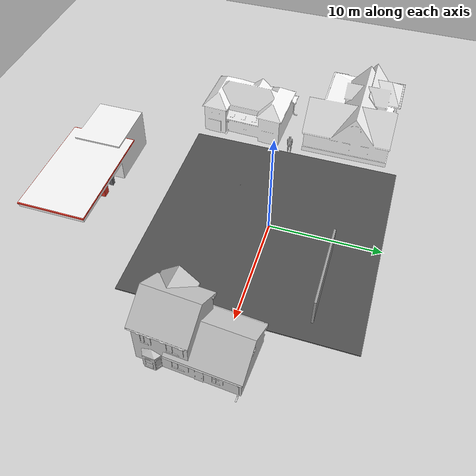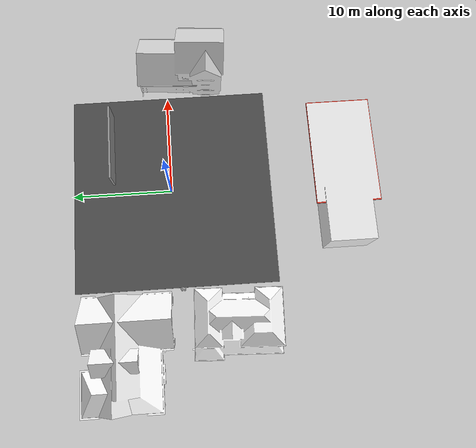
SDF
<sdf version="1.6">
 <world name="default">
  <light name="sun" type="directional">
   <pose>0 0 10 0 -0 0</pose>
   <diffuse>0.8 0.8 0.8 1</diffuse>
   <specular>0.1 0.1 0.1 1</specular>
   <attenuation>
    <range>1000</range>
    <constant>0.9</constant>
    <linear>0.01</linear>
    <quadratic>0.001</quadratic>
   </attenuation>
   <direction>-0.5 0.5 -1</direction>
  </light>
  <model name="ground_plane">
   <static>1</static>
   <link name="link">
    <collision name="collision">
     <geometry><plane><normal>0 0 1</normal><size>100 100</size></plane></geometry>
     <surface><friction><ode><mu>100</mu><mu2>50</mu2></ode></friction></surface>
    </collision>
    <visual name="visual">
     <cast_shadows>0</cast_shadows>
     <geometry><plane><normal>0 0 1</normal><size>100 100</size></plane></geometry>
     <material>
      <script><uri>file://media/materials/scripts/gazebo.material</uri><name>Gazebo/Grey</name></script>
     </material>
    </visual>
   </link>
  </model>
  <gravity>0 0 -9.8</gravity>
  <magnetic_field>6e-06 2.3e-05 -4.2e-05</magnetic_field>
  <atmosphere type="adiabatic"/>
  <physics name="default_physics" default="0" type="ode">
   <max_step_size>0.001</max_step_size>
   <real_time_factor>1</real_time_factor>
   <real_time_update_rate>1000</real_time_update_rate>
  </physics>
  <scene><ambient>0.4 0.4 0.4 1</ambient><background>0.7 0.7 0.7 1</background><shadows>1</shadows></scene>
  <spherical_coordinates>
   <surface_model>EARTH_WGS84</surface_model>
   <latitude_deg>0</latitude_deg>
   <longitude_deg>0</longitude_deg>
   <elevation>0</elevation>
   <heading_deg>0</heading_deg>
  </spherical_coordinates>
  <model name="asphalt_plane">
   <static>1</static>
   <link name="link">
    <collision name="collision"><geometry><box><size>20 20 0.1</size></box></geometry></collision>
    <visual name="visual">
     <cast_shadows>0</cast_shadows>
     <geometry><box><size>20 20 0.1</size></box></geometry>
     <material>
      <script>
       <uri>model://asphalt_plane/materials/scripts</uri>
       <uri>model://asphalt_plane/materials/textures</uri>
       <name>vrc/asphalt</name>
      </script>
     </material>
    </visual>
   </link>
   <pose>0.224182 -0.090763 0 0 -0 0</pose>
  </model>
  <model name="grey_wall">
   <static>1</static>
   <link name="link">
    <pose>0 0 1.4 0 -0 0</pose>
    <collision name="collision"><geometry><box><size>7.5 0.2 2.8</size></box></geometry></collision>
    <visual name="visual">
     <cast_shadows>0</cast_shadows>
     <geometry><box><size>7.5 0.2 2.8</size></box></geometry>
     <material>
      <script>
       <uri>model://grey_wall/materials/scripts</uri>
       <uri>model://grey_wall/materials/textures</uri>
       <name>vrc/grey_wall</name>
      </script>
     </material>
    </visual>
   </link>
   <pose>4.79983 5.8163 0 0 -0 0</pose>
  </model>
  <model name="House 1">
   <static>1</static>
   <link name="link">
    <collision name="collision">
     <geometry><mesh><uri>model://house_1/meshes/house_1.dae</uri><scale>1 1 1</scale></mesh></geometry>
    </collision>
    <visual name="visual">
     <geometry><mesh><uri>model://house_1/meshes/house_1.dae</uri><scale>1 1 1</scale></mesh></geometry>
     <material>
      <script>
       <uri>model://house_1/materials/scripts</uri>
       <uri>model://house_1/materials/textures</uri>
       <name>House_1/Diffuse</name>
      </script>
      <shader type="normal_map_object_space"><normal_map>House_1_Normal.png</normal_map></shader>
     </material>
    </visual>
   </link>
   <pose>-15.4702 4.8985 0 0 -0 0</pose>
  </model>
  <model name="House 2">
   <static>1</static>
   <link name="link">
    <collision name="collision">
     <geometry><mesh><uri>model://house_2/meshes/house_2.dae</uri><scale>1 1 1</scale></mesh></geometry>
    </collision>
    <visual name="visual">
     <geometry><mesh><uri>model://house_2/meshes/house_2.dae</uri><scale>1 1 1</scale></mesh></geometry>
     <material>
      <script>
       <uri>model://house_2/materials/scripts</uri>
       <uri>model://house_2/materials/textures</uri>
       <name>House_2/Diffuse</name>
      </script>
     </material>
    </visual>
   </link>
   <pose>-13.1179 -6.3686 0 0 -0 1.53184</pose>
  </model>
  <model name="person_standing">
   <link name="link">
    <inertial>
     <pose>0 -0.1 0.95 0 -0 0</pose>
     <mass>80</mass>
     <inertia><ixx>24.88</ixx><ixy>0</ixy><ixz>0</ixz><iyy>25.73</iyy><iyz>0</iyz><izz>2.48</izz></inertia>
    </inertial>
    <collision name="bottom">
     <pose>0 -0.1 0.01 0 -0 0</pose>
     <geometry><box><size>0.5 0.35 0.02</size></box></geometry>
    </collision>
    <collision name="person">
     <pose>0 0 0.02 0.04 -0 0</pose>
     <geometry><mesh><uri>model://person_standing/meshes/standing.dae</uri><scale>1 1 1</scale></mesh></geometry>
    </collision>
    <visual name="visual">
     <pose>0 0 0.02 0.04 -0 0</pose>
     <geometry><mesh><uri>model://person_standing/meshes/standing.dae</uri><scale>1 1 1</scale></mesh></geometry>
    </visual>
   </link>
   <pose>-10.096 -0.690376 -1e-06 -1e-06 -1e-06 1.59423</pose>
  </model>
  <model name="Construction Cone">
   <static>1</static>
   <link name="link">
    <collision name="collision">
     <geometry>
      <mesh><scale>1 1 1</scale><uri>model://construction_cone/meshes/construction_cone.dae</uri></mesh>
     </geometry>
    </collision>
    <visual name="visual">
     <geometry>
      <mesh><scale>1 1 1</scale><uri>model://construction_cone/meshes/construction_cone.dae</uri></mesh>
     </geometry>
    </visual>
   </link>
   <pose>-3.98836 -3.88342 0 0 -0 0</pose>
  </model>
  <model name="Gas Station">
   <static>1</static>
   <link name="link">
    <collision name="collision">
     <geometry><mesh><uri>model://gas_station/meshes/gas_station.dae</uri><scale>1 1 1</scale></mesh></geometry>
    </collision>
    <visual name="visual">
     <geometry><mesh><uri>model://gas_station/meshes/gas_station.dae</uri><scale>1 1 1</scale></mesh></geometry>
     <material>
      <script>
       <uri>model://gas_station/materials/scripts</uri>
       <uri>model://gas_station/materials/textures</uri>
       <name>GasStation/Diffuse</name>
      </script>
      <shader type="normal_map_object_space"><normal_map>GasStation_Normal.png</normal_map></shader>
     </material>
    </visual>
   </link>
   <pose>-0.371133 -16.8544 0 0 -0 0</pose>
  </model>
  <model name="House 3">
   <static>1</static>
   <link name="link">
    <collision name="collision">
     <geometry><mesh><uri>model://house_3/meshes/house_3.dae</uri><scale>1 1 1</scale></mesh></geometry>
    </collision>
    <visual name="visual">
     <geometry><mesh><uri>model://house_3/meshes/house_3.dae</uri><scale>1 1 1</scale></mesh></geometry>
     <material>
      <script>
       <uri>model://house_3/materials/scripts</uri>
       <uri>model://house_3/materials/textures</uri>
       <name>House_3/Diffuse</name>
      </script>
     </material>
    </visual>
   </link>
   <pose>13.2531 -1.34028 0 0 -0 1.49839</pose>
  </model>
 </world>
</sdf>
